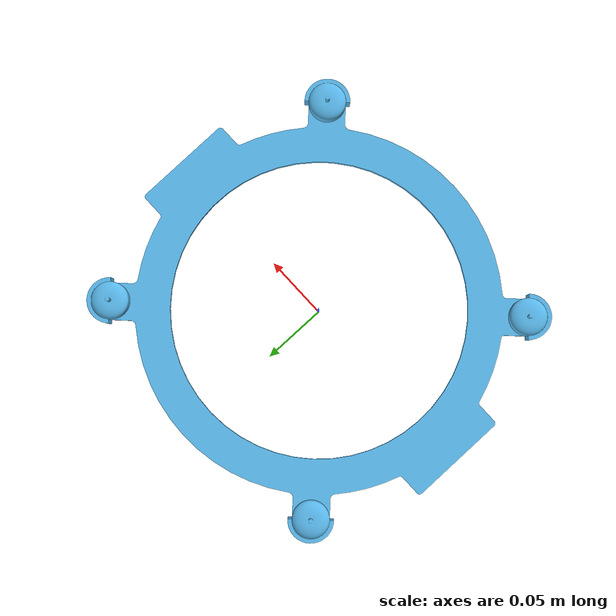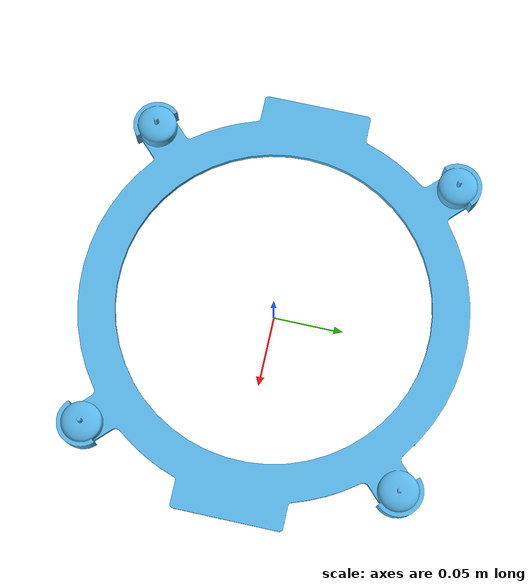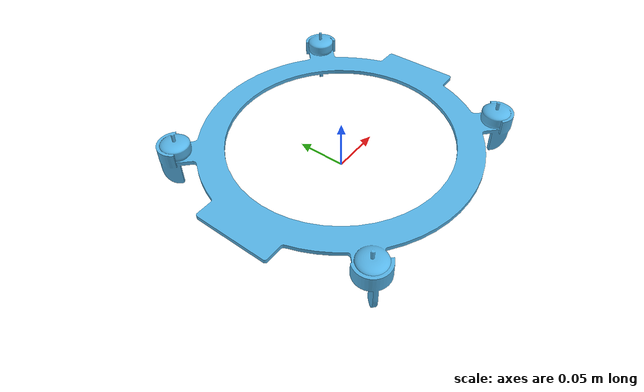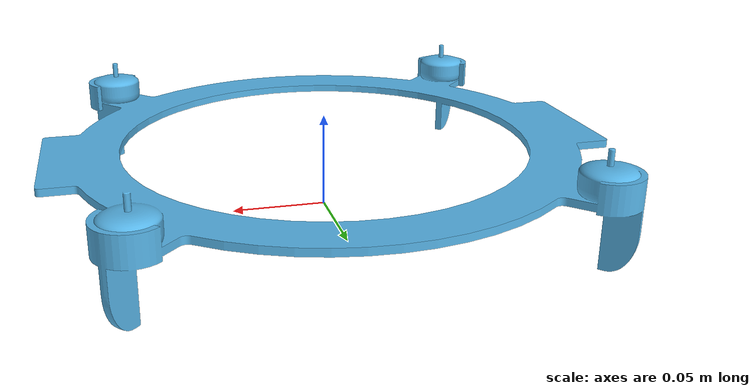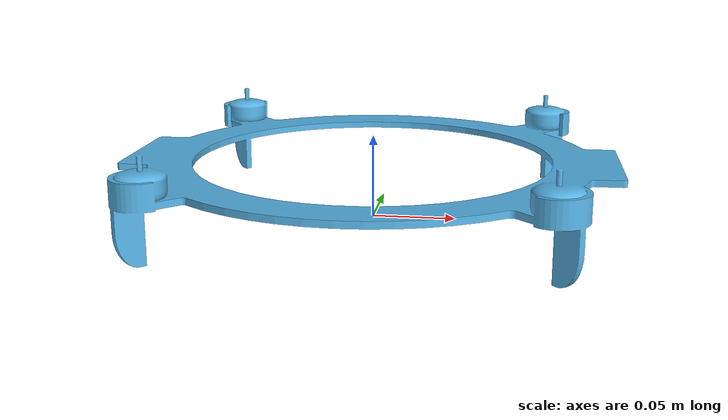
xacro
<?xml version="1.0"?>

<robot name="docker" xmlns:xacro="http://ros.org/wiki/xacro">
  <!-- Properties -->
  <xacro:property name="namespace" value="docker" />
  <xacro:property name="rotor_velocity_slowdown_sim" value="20" />
  <xacro:property name="mesh_file" value="meshes/docker_visual.dae"/>
  <xacro:property name="use_collision_mesh" value="true"/>
  <xacro:property name="use_friction" value="false"/>
  <xacro:property name="collision_mesh_file" value="meshes/docker_collision.dae"/>
  <xacro:property name="mesh_scale" value="1 1 1"/>
  <xacro:property name="mass" value="0.7" /> <!-- [kg] -->
  <xacro:property name="body_width" value="0.47" />
  <xacro:property name="body_height" value="0.11" />
  <xacro:property name="mass_rotor" value="0.005" /> <!-- [kg] -->
  <xacro:property name="arm_length" value="0.15" />
  <xacro:property name="rotor_offset_top" value="0.056" />
  <xacro:property name="radius_rotor" value="0.0381" />
  <xacro:property name="motor_constant" value="8.54858e-06" /> <!-- [kg.m/s^2] -->
  <xacro:property name="moment_constant" value="0.06" />
  <xacro:property name="time_constant_up" value="0.0125" />
  <xacro:property name="time_constant_down" value="0.025" />
  <xacro:property name="max_rot_velocity" value="1100" /> <!-- [rad/s] -->
  <xacro:property name="rotor_drag_coefficient" value="8.06428e-04" />
  <xacro:property name="rolling_moment_coefficient" value="0.000001" />
  <xacro:property name="color" value="$(arg visual_material)" />

  <!-- Property Blocks -->
  <xacro:property name="body_inertia">
    <inertia ixx="0.011" ixy="0.0" ixz="0.0" iyy="0.015" iyz="0.0" izz="0.021" /> <!-- [kg.m^2] [kg.m^2] [kg.m^2] [kg.m^2] [kg.m^2] [kg.m^2] -->
  </xacro:property>

  <!-- inertia of a single rotor, assuming it is a cuboid. Height=3mm, width=15mm -->
  <xacro:property name="rotor_inertia">
    <inertia
    ixx="${1/12 * mass_rotor * (0.015 * 0.015 + 0.003 * 0.003) * rotor_velocity_slowdown_sim}"
    iyy="${1/12 * mass_rotor * (4 * radius_rotor * radius_rotor + 0.003 * 0.003) * rotor_velocity_slowdown_sim}"
    izz="${1/12 * mass_rotor * (4 * radius_rotor * radius_rotor + 0.015 * 0.015) * rotor_velocity_slowdown_sim}"
    ixy="0.0" ixz="0.0"  iyz="0.0" /> <!-- [kg.m^2] [kg.m^2] [kg.m^2] [kg.m^2] [kg.m^2] [kg.m^2] -->
  </xacro:property>

  <link name="${namespace}/base_link"></link>

    <joint name="${namespace}/base_joint" type="fixed">
      <origin xyz="0 0 0" rpy="0 0 0" />
      <parent link="${namespace}/base_link" />
      <child link="${namespace}/base_link_inertia" />
    </joint>

    <link name="${namespace}/base_link_inertia">
      <inertial>
        <mass value="${mass}" />  <!-- [kg] -->
        <origin xyz="0 0 0" />
      </inertial>

      <visual>
        <origin xyz="0 0 0" rpy="0 0 0" />
        <geometry>
          <mesh filename="${mesh_file}" scale="${mesh_scale}" />

        </geometry>
      </visual>

      <collision>
        <origin xyz="0 0 0" rpy="0 0 0" />
        <geometry>
          <mesh filename="${collision_mesh_file}" scale="${mesh_scale}" />
        </geometry>
        <surface>
          <friction>
            <ode>
              <mu>0.0</mu>
              <mu2>0.0</mu2>
            </ode>
          </friction>
        </surface>
      </collision>
    </link>

</robot>
